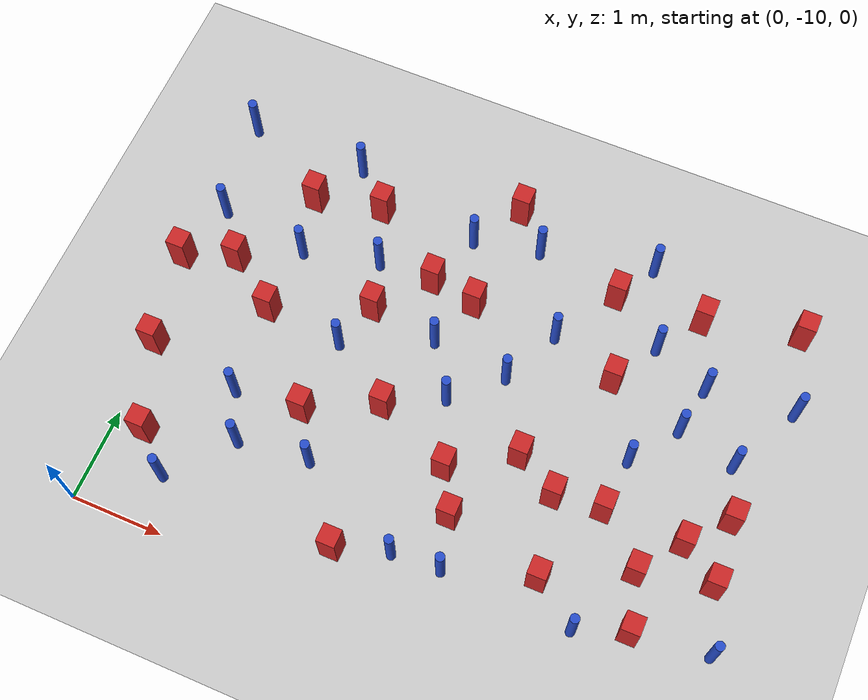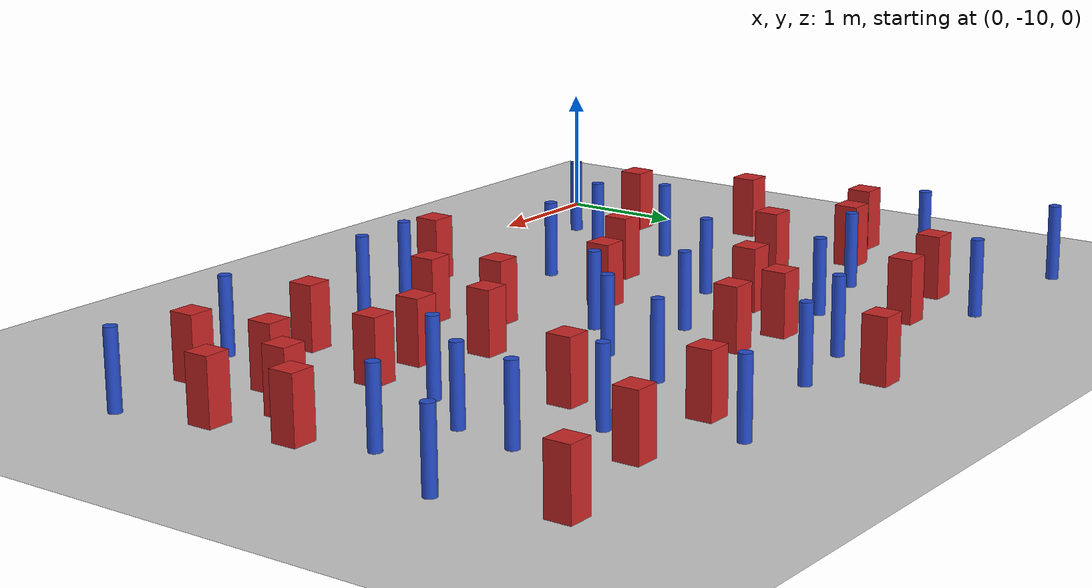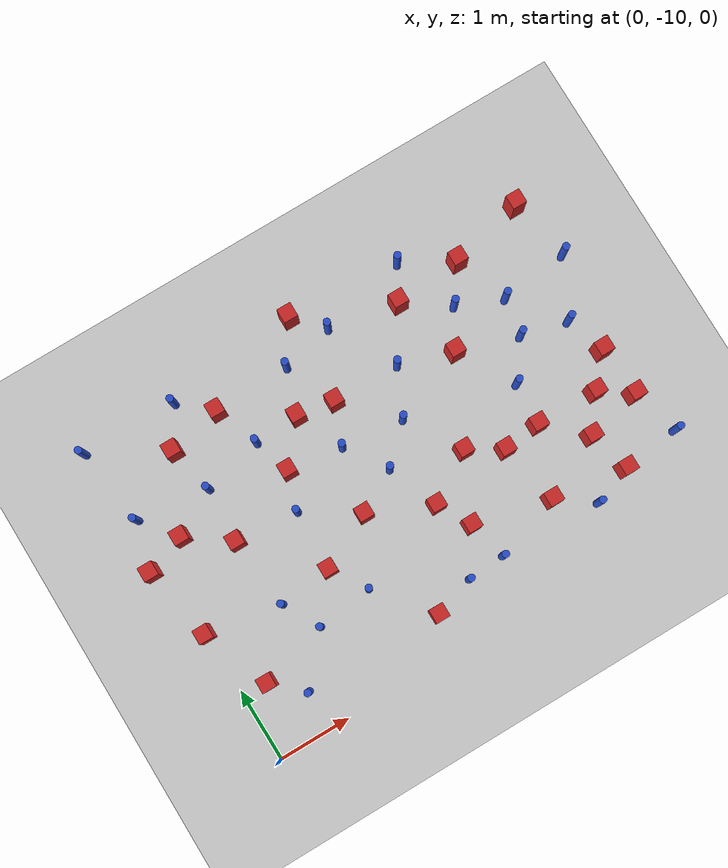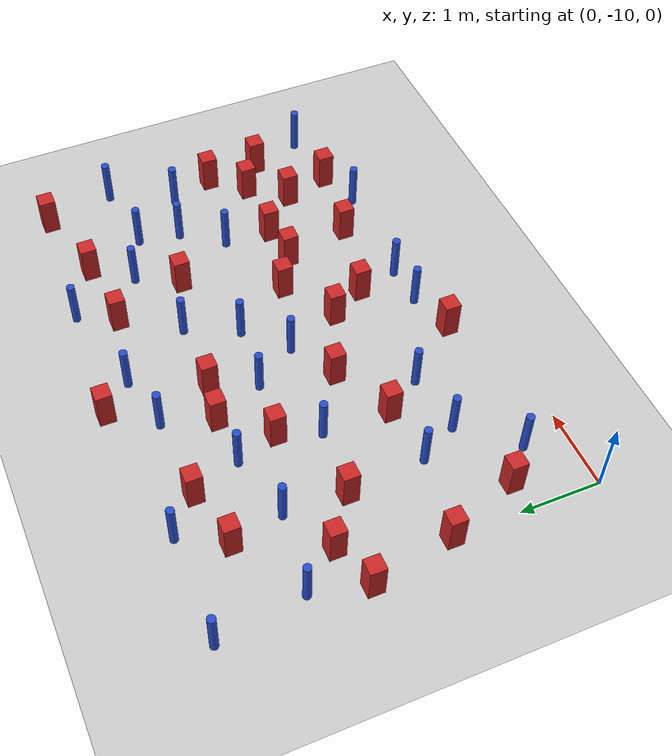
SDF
<sdf version="1.6">
 <world name="default">
  <model name="ground_plane">
   <static>1</static>
   <link name="link">
    <collision name="collision">
     <geometry><plane><normal>0 0 1</normal><size>100 100</size></plane></geometry>
     <surface><friction><ode><mu>100</mu><mu2>50</mu2></ode></friction></surface>
    </collision>
    <visual name="visual">
     <cast_shadows>0</cast_shadows>
     <geometry><plane><normal>0 0 1</normal><size>100 100</size></plane></geometry>
     <material>
      <ambient>1.0 1.0 1.0 1.0</ambient>
      <diffuse>0.8 0.8 0.8 1.0</diffuse>
      <specular>0.01 0.01 0.01 1.000000</specular>
     </material>
    </visual>
   </link>
  </model>
  <model name="square_post_obstacle1">
   <static>true</static>
   <pose>3.60007113201 -8.70975381348 1.91545236811e-07 -7.35059704564e-06 1.12565212e-07 2.39332434364e-05</pose>
   <link name="link">
    <pose>0 0 0.25 0 -0 0</pose>
    <inertial>
     <mass>100</mass>
     <inertia>
      <ixx>0.166667</ixx>
      <ixy>0</ixy>
      <ixz>0</ixz>
      <iyy>0.166667</iyy>
      <iyz>0</iyz>
      <izz>0.166667</izz>
     </inertia>
    </inertial>
    <collision name="collision"><geometry><box><size>.2 .2 .5</size></box></geometry></collision>
    <visual name="visual">
     <geometry><box><size>.2 .2 .5</size></box></geometry>
     <material>
      <script><name>Gazebo/Red</name><uri>file://media/materials/scripts/gazebo.material</uri></script>
     </material>
    </visual>
   </link>
  </model>
  <model name="pole_obstacle3">
   <static>true</static>
   <pose>2.62775557527 -5.74288238805 7.38925637345e-09 -8.47170692798e-08 1.24976765033e-08 -1.74513093019e-07</pose>
   <link name="link">
    <pose>0 0 0.3 0 -0 0</pose>
    <inertial>
     <mass>1</mass>
     <inertia><ixx>0.145833</ixx><ixy>0</ixy><ixz>0</ixz><iyy>0.145833</iyy><iyz>0</iyz><izz>0.125</izz></inertia>
    </inertial>
    <collision name="collision">
     <geometry><cylinder><radius>0.05</radius><length>.6</length></cylinder></geometry>
    </collision>
    <visual name="visual">
     <geometry><cylinder><radius>0.05</radius><length>.6</length></cylinder></geometry>
     <material>
      <script><name>Gazebo/Blue</name><uri>file://media/materials/scripts/gazebo.material</uri></script>
     </material>
    </visual>
   </link>
  </model>
  <model name="square_post_obstacle2">
   <static>true</static>
   <pose>-0.00571309946755 -8.15404881912 1.91545236811e-07 -7.35059704564e-06 1.12565212e-07 2.39332434364e-05</pose>
   <link name="link">
    <pose>0 0 0.25 0 -0 0</pose>
    <inertial>
     <mass>100</mass>
     <inertia>
      <ixx>0.166667</ixx>
      <ixy>0</ixy>
      <ixz>0</ixz>
      <iyy>0.166667</iyy>
      <iyz>0</iyz>
      <izz>0.166667</izz>
     </inertia>
    </inertial>
    <collision name="collision"><geometry><box><size>.2 .2 .5</size></box></geometry></collision>
    <visual name="visual">
     <geometry><box><size>.2 .2 .5</size></box></geometry>
     <material>
      <script><name>Gazebo/Red</name><uri>file://media/materials/scripts/gazebo.material</uri></script>
     </material>
    </visual>
   </link>
  </model>
  <model name="square_post_obstacle4">
   <static>true</static>
   <pose>0.83003484801 -5.93253629096 1.91545236811e-07 -7.35059704564e-06 1.12565212e-07 2.39332434364e-05</pose>
   <link name="link">
    <pose>0 0 0.25 0 -0 0</pose>
    <inertial>
     <mass>100</mass>
     <inertia>
      <ixx>0.166667</ixx>
      <ixy>0</ixy>
      <ixz>0</ixz>
      <iyy>0.166667</iyy>
      <iyz>0</iyz>
      <izz>0.166667</izz>
     </inertia>
    </inertial>
    <collision name="collision"><geometry><box><size>.2 .2 .5</size></box></geometry></collision>
    <visual name="visual">
     <geometry><box><size>.2 .2 .5</size></box></geometry>
     <material>
      <script><name>Gazebo/Red</name><uri>file://media/materials/scripts/gazebo.material</uri></script>
     </material>
    </visual>
   </link>
  </model>
  <model name="square_post_obstacle5">
   <static>true</static>
   <pose>3.35127214875 -8.25828896306 1.91545236811e-07 -7.35059704564e-06 1.12565212e-07 2.39332434364e-05</pose>
   <link name="link">
    <pose>0 0 0.25 0 -0 0</pose>
    <inertial>
     <mass>100</mass>
     <inertia>
      <ixx>0.166667</ixx>
      <ixy>0</ixy>
      <ixz>0</ixz>
      <iyy>0.166667</iyy>
      <iyz>0</iyz>
      <izz>0.166667</izz>
     </inertia>
    </inertial>
    <collision name="collision"><geometry><box><size>.2 .2 .5</size></box></geometry></collision>
    <visual name="visual">
     <geometry><box><size>.2 .2 .5</size></box></geometry>
     <material>
      <script><name>Gazebo/Red</name><uri>file://media/materials/scripts/gazebo.material</uri></script>
     </material>
    </visual>
   </link>
  </model>
  <model name="pole_obstacle14">
   <static>true</static>
   <pose>0.746739444171 -9.45464630516 7.38925637345e-09 -8.47170692797e-08 1.249767648e-08 -1.74513093032e-07</pose>
   <link name="link">
    <pose>0 0 0.3 0 -0 0</pose>
    <inertial>
     <mass>1</mass>
     <inertia><ixx>0.145833</ixx><ixy>0</ixy><ixz>0</ixz><iyy>0.145833</iyy><iyz>0</iyz><izz>0.125</izz></inertia>
    </inertial>
    <collision name="collision">
     <geometry><cylinder><radius>0.05</radius><length>.6</length></cylinder></geometry>
    </collision>
    <visual name="visual">
     <geometry><cylinder><radius>0.05</radius><length>.6</length></cylinder></geometry>
     <material>
      <script><name>Gazebo/Blue</name><uri>file://media/materials/scripts/gazebo.material</uri></script>
     </material>
    </visual>
   </link>
  </model>
  <model name="pole_obstacle26">
   <static>true</static>
   <pose>5.42265023992 -6.95552953939 7.38925637345e-09 -8.47170692796e-08 1.24976764786e-08 -1.74513093032e-07</pose>
   <link name="link">
    <pose>0 0 0.3 0 -0 0</pose>
    <inertial>
     <mass>1</mass>
     <inertia><ixx>0.145833</ixx><ixy>0</ixy><ixz>0</ixz><iyy>0.145833</iyy><iyz>0</iyz><izz>0.125</izz></inertia>
    </inertial>
    <collision name="collision">
     <geometry><cylinder><radius>0.05</radius><length>.6</length></cylinder></geometry>
    </collision>
    <visual name="visual">
     <geometry><cylinder><radius>0.05</radius><length>.6</length></cylinder></geometry>
     <material>
      <script><name>Gazebo/Blue</name><uri>file://media/materials/scripts/gazebo.material</uri></script>
     </material>
    </visual>
   </link>
  </model>
  <model name="square_post_obstacle19">
   <static>true</static>
   <pose>2.92785680124 -6.44692021054 1.91545236811e-07 -7.35059704564e-06 1.12565212e-07 2.39332434364e-05</pose>
   <link name="link">
    <pose>0 0 0.25 0 -0 0</pose>
    <inertial>
     <mass>100</mass>
     <inertia>
      <ixx>0.166667</ixx>
      <ixy>0</ixy>
      <ixz>0</ixz>
      <iyy>0.166667</iyy>
      <iyz>0</iyz>
      <izz>0.166667</izz>
     </inertia>
    </inertial>
    <collision name="collision"><geometry><box><size>.2 .2 .5</size></box></geometry></collision>
    <visual name="visual">
     <geometry><box><size>.2 .2 .5</size></box></geometry>
     <material>
      <script><name>Gazebo/Red</name><uri>file://media/materials/scripts/gazebo.material</uri></script>
     </material>
    </visual>
   </link>
  </model>
  <model name="square_post_obstacle23">
   <static>true</static>
   <pose>1.95790335823 -6.9051319329 1.91545236811e-07 -7.35059704564e-06 1.12565212e-07 2.39332434364e-05</pose>
   <link name="link">
    <pose>0 0 0.25 0 -0 0</pose>
    <inertial>
     <mass>100</mass>
     <inertia>
      <ixx>0.166667</ixx>
      <ixy>0</ixy>
      <ixz>0</ixz>
      <iyy>0.166667</iyy>
      <iyz>0</iyz>
      <izz>0.166667</izz>
     </inertia>
    </inertial>
    <collision name="collision"><geometry><box><size>.2 .2 .5</size></box></geometry></collision>
    <visual name="visual">
     <geometry><box><size>.2 .2 .5</size></box></geometry>
     <material>
      <script><name>Gazebo/Red</name><uri>file://media/materials/scripts/gazebo.material</uri></script>
     </material>
    </visual>
   </link>
  </model>
  <model name="pole_obstacle31">
   <static>true</static>
   <pose>3.86045111575 -6.46031400255 7.38925637345e-09 -8.47170692798e-08 1.24976765033e-08 -1.74513093019e-07</pose>
   <link name="link">
    <pose>0 0 0.3 0 -0 0</pose>
    <inertial>
     <mass>1</mass>
     <inertia><ixx>0.145833</ixx><ixy>0</ixy><ixz>0</ixz><iyy>0.145833</iyy><iyz>0</iyz><izz>0.125</izz></inertia>
    </inertial>
    <collision name="collision">
     <geometry><cylinder><radius>0.05</radius><length>.6</length></cylinder></geometry>
    </collision>
    <visual name="visual">
     <geometry><cylinder><radius>0.05</radius><length>.6</length></cylinder></geometry>
     <material>
      <script><name>Gazebo/Blue</name><uri>file://media/materials/scripts/gazebo.material</uri></script>
     </material>
    </visual>
   </link>
  </model>
  <model name="pole_obstacle36">
   <static>true</static>
   <pose>4.89690925731 -6.17365873826 7.38925637345e-09 -8.47170692796e-08 1.24976764786e-08 -1.74513093032e-07</pose>
   <link name="link">
    <pose>0 0 0.3 0 -0 0</pose>
    <inertial>
     <mass>1</mass>
     <inertia><ixx>0.145833</ixx><ixy>0</ixy><ixz>0</ixz><iyy>0.145833</iyy><iyz>0</iyz><izz>0.125</izz></inertia>
    </inertial>
    <collision name="collision">
     <geometry><cylinder><radius>0.05</radius><length>.6</length></cylinder></geometry>
    </collision>
    <visual name="visual">
     <geometry><cylinder><radius>0.05</radius><length>.6</length></cylinder></geometry>
     <material>
      <script><name>Gazebo/Blue</name><uri>file://media/materials/scripts/gazebo.material</uri></script>
     </material>
    </visual>
   </link>
  </model>
  <model name="square_post_obstacle33">
   <static>true</static>
   <pose>5.85412446367 -8.06886549857 1.91545236811e-07 -7.35059704564e-06 1.12565212e-07 2.39332434364e-05</pose>
   <link name="link">
    <pose>0 0 0.25 0 -0 0</pose>
    <inertial>
     <mass>100</mass>
     <inertia>
      <ixx>0.166667</ixx>
      <ixy>0</ixy>
      <ixz>0</ixz>
      <iyy>0.166667</iyy>
      <iyz>0</iyz>
      <izz>0.166667</izz>
     </inertia>
    </inertial>
    <collision name="collision"><geometry><box><size>.2 .2 .5</size></box></geometry></collision>
    <visual name="visual">
     <geometry><box><size>.2 .2 .5</size></box></geometry>
     <material>
      <script><name>Gazebo/Red</name><uri>file://media/materials/scripts/gazebo.material</uri></script>
     </material>
    </visual>
   </link>
  </model>
  <model name="pole_obstacle49">
   <static>true</static>
   <pose>5.51853349236 -6.43197653909 7.38925637345e-09 -8.47170692796e-08 1.24976764786e-08 -1.74513093032e-07</pose>
   <link name="link">
    <pose>0 0 0.3 0 -0 0</pose>
    <inertial>
     <mass>1</mass>
     <inertia><ixx>0.145833</ixx><ixy>0</ixy><ixz>0</ixz><iyy>0.145833</iyy><iyz>0</iyz><izz>0.125</izz></inertia>
    </inertial>
    <collision name="collision">
     <geometry><cylinder><radius>0.05</radius><length>.6</length></cylinder></geometry>
    </collision>
    <visual name="visual">
     <geometry><cylinder><radius>0.05</radius><length>.6</length></cylinder></geometry>
     <material>
      <script><name>Gazebo/Blue</name><uri>file://media/materials/scripts/gazebo.material</uri></script>
     </material>
    </visual>
   </link>
  </model>
  <model name="square_post_obstacle40">
   <static>true</static>
   <pose>5.66714782452 -9.11094235652 1.91545236811e-07 -7.35059704564e-06 1.12565212e-07 2.39332434364e-05</pose>
   <link name="link">
    <pose>0 0 0.25 0 -0 0</pose>
    <inertial>
     <mass>100</mass>
     <inertia>
      <ixx>0.166667</ixx>
      <ixy>0</ixy>
      <ixz>0</ixz>
      <iyy>0.166667</iyy>
      <iyz>0</iyz>
      <izz>0.166667</izz>
     </inertia>
    </inertial>
    <collision name="collision"><geometry><box><size>.2 .2 .5</size></box></geometry></collision>
    <visual name="visual">
     <geometry><box><size>.2 .2 .5</size></box></geometry>
     <material>
      <script><name>Gazebo/Red</name><uri>file://media/materials/scripts/gazebo.material</uri></script>
     </material>
    </visual>
   </link>
  </model>
  <model name="pole_obstacle55">
   <static>true</static>
   <pose>1.14823176474 -5.3985442383 7.38925637345e-09 -8.47170692799e-08 1.24976765033e-08 -1.74513093018e-07</pose>
   <link name="link">
    <pose>0 0 0.3 0 -0 0</pose>
    <inertial>
     <mass>1</mass>
     <inertia><ixx>0.145833</ixx><ixy>0</ixy><ixz>0</ixz><iyy>0.145833</iyy><iyz>0</iyz><izz>0.125</izz></inertia>
    </inertial>
    <collision name="collision">
     <geometry><cylinder><radius>0.05</radius><length>.6</length></cylinder></geometry>
    </collision>
    <visual name="visual">
     <geometry><cylinder><radius>0.05</radius><length>.6</length></cylinder></geometry>
     <material>
      <script><name>Gazebo/Blue</name><uri>file://media/materials/scripts/gazebo.material</uri></script>
     </material>
    </visual>
   </link>
  </model>
  <model name="square_post_obstacle42">
   <static>true</static>
   <pose>4.0143747495 -7.84212469346 1.91545236811e-07 -7.35059704564e-06 1.12565212e-07 2.39332434364e-05</pose>
   <link name="link">
    <pose>0 0 0.25 0 -0 0</pose>
    <inertial>
     <mass>100</mass>
     <inertia>
      <ixx>0.166667</ixx>
      <ixy>0</ixy>
      <ixz>0</ixz>
      <iyy>0.166667</iyy>
      <iyz>0</iyz>
      <izz>0.166667</izz>
     </inertia>
    </inertial>
    <collision name="collision"><geometry><box><size>.2 .2 .5</size></box></geometry></collision>
    <visual name="visual">
     <geometry><box><size>.2 .2 .5</size></box></geometry>
     <material>
      <script><name>Gazebo/Red</name><uri>file://media/materials/scripts/gazebo.material</uri></script>
     </material>
    </visual>
   </link>
  </model>
  <model name="square_post_obstacle48">
   <static>true</static>
   <pose>4.65203115893 -8.958201384 1.91545236811e-07 -7.35059704564e-06 1.12565212e-07 2.39332434364e-05</pose>
   <link name="link">
    <pose>0 0 0.25 0 -0 0</pose>
    <inertial>
     <mass>100</mass>
     <inertia>
      <ixx>0.166667</ixx>
      <ixy>0</ixy>
      <ixz>0</ixz>
      <iyy>0.166667</iyy>
      <iyz>0</iyz>
      <izz>0.166667</izz>
     </inertia>
    </inertial>
    <collision name="collision"><geometry><box><size>.2 .2 .5</size></box></geometry></collision>
    <visual name="visual">
     <geometry><box><size>.2 .2 .5</size></box></geometry>
     <material>
      <script><name>Gazebo/Red</name><uri>file://media/materials/scripts/gazebo.material</uri></script>
     </material>
    </visual>
   </link>
  </model>
  <model name="square_post_obstacle52">
   <static>true</static>
   <pose>2.5039220069 -7.88337168289 1.91545236811e-07 -7.35059704564e-06 1.12565212e-07 2.39332434364e-05</pose>
   <link name="link">
    <pose>0 0 0.25 0 -0 0</pose>
    <inertial>
     <mass>100</mass>
     <inertia>
      <ixx>0.166667</ixx>
      <ixy>0</ixy>
      <ixz>0</ixz>
      <iyy>0.166667</iyy>
      <iyz>0</iyz>
      <izz>0.166667</izz>
     </inertia>
    </inertial>
    <collision name="collision"><geometry><box><size>.2 .2 .5</size></box></geometry></collision>
    <visual name="visual">
     <geometry><box><size>.2 .2 .5</size></box></geometry>
     <material>
      <script><name>Gazebo/Red</name><uri>file://media/materials/scripts/gazebo.material</uri></script>
     </material>
    </visual>
   </link>
  </model>
  <model name="square_post_obstacle61">
   <static>true</static>
   <pose>4.29645073439 -5.76788240031 1.91545236811e-07 -7.35059704564e-06 1.12565212e-07 2.39332434364e-05</pose>
   <link name="link">
    <pose>0 0 0.25 0 -0 0</pose>
    <inertial>
     <mass>100</mass>
     <inertia>
      <ixx>0.166667</ixx>
      <ixy>0</ixy>
      <ixz>0</ixz>
      <iyy>0.166667</iyy>
      <iyz>0</iyz>
      <izz>0.166667</izz>
     </inertia>
    </inertial>
    <collision name="collision"><geometry><box><size>.2 .2 .5</size></box></geometry></collision>
    <visual name="visual">
     <geometry><box><size>.2 .2 .5</size></box></geometry>
     <material>
      <script><name>Gazebo/Red</name><uri>file://media/materials/scripts/gazebo.material</uri></script>
     </material>
    </visual>
   </link>
  </model>
  <model name="pole_obstacle72">
   <static>true</static>
   <pose>-0.167908209576 -5.37216037171 7.38925637345e-09 -8.47170692799e-08 1.24976765043e-08 -1.74513093019e-07</pose>
   <link name="link">
    <pose>0 0 0.3 0 -0 0</pose>
    <inertial>
     <mass>1</mass>
     <inertia><ixx>0.145833</ixx><ixy>0</ixy><ixz>0</ixz><iyy>0.145833</iyy><iyz>0</iyz><izz>0.125</izz></inertia>
    </inertial>
    <collision name="collision">
     <geometry><cylinder><radius>0.05</radius><length>.6</length></cylinder></geometry>
    </collision>
    <visual name="visual">
     <geometry><cylinder><radius>0.05</radius><length>.6</length></cylinder></geometry>
     <material>
      <script><name>Gazebo/Blue</name><uri>file://media/materials/scripts/gazebo.material</uri></script>
     </material>
    </visual>
   </link>
  </model>
  <model name="pole_obstacle76">
   <static>true</static>
   <pose>-0.0161964119986 -6.45572256769 7.38925637345e-09 -8.471706928e-08 1.24976765084e-08 -1.74513093016e-07</pose>
   <link name="link">
    <pose>0 0 0.3 0 -0 0</pose>
    <inertial>
     <mass>1</mass>
     <inertia><ixx>0.145833</ixx><ixy>0</ixy><ixz>0</ixz><iyy>0.145833</iyy><iyz>0</iyz><izz>0.125</izz></inertia>
    </inertial>
    <collision name="collision">
     <geometry><cylinder><radius>0.05</radius><length>.6</length></cylinder></geometry>
    </collision>
    <visual name="visual">
     <geometry><cylinder><radius>0.05</radius><length>.6</length></cylinder></geometry>
     <material>
      <script><name>Gazebo/Blue</name><uri>file://media/materials/scripts/gazebo.material</uri></script>
     </material>
    </visual>
   </link>
  </model>
  <model name="pole_obstacle77">
   <static>true</static>
   <pose>0.96881919958 -6.58561730798 7.38925637345e-09 -8.471706928e-08 1.24976765144e-08 -1.74513093012e-07</pose>
   <link name="link">
    <pose>0 0 0.3 0 -0 0</pose>
    <inertial>
     <mass>1</mass>
     <inertia><ixx>0.145833</ixx><ixy>0</ixy><ixz>0</ixz><iyy>0.145833</iyy><iyz>0</iyz><izz>0.125</izz></inertia>
    </inertial>
    <collision name="collision">
     <geometry><cylinder><radius>0.05</radius><length>.6</length></cylinder></geometry>
    </collision>
    <visual name="visual">
     <geometry><cylinder><radius>0.05</radius><length>.6</length></cylinder></geometry>
     <material>
      <script><name>Gazebo/Blue</name><uri>file://media/materials/scripts/gazebo.material</uri></script>
     </material>
    </visual>
   </link>
  </model>
  <model name="square_post_obstacle76">
   <static>true</static>
   <pose>6.21691720021 -7.65410108046 1.91545236811e-07 -7.35059704564e-06 1.12565212e-07 2.39332434364e-05</pose>
   <link name="link">
    <pose>0 0 0.25 0 -0 0</pose>
    <inertial>
     <mass>100</mass>
     <inertia>
      <ixx>0.166667</ixx>
      <ixy>0</ixy>
      <ixz>0</ixz>
      <iyy>0.166667</iyy>
      <iyz>0</iyz>
      <izz>0.166667</izz>
     </inertia>
    </inertial>
    <collision name="collision"><geometry><box><size>.2 .2 .5</size></box></geometry></collision>
    <visual name="visual">
     <geometry><box><size>.2 .2 .5</size></box></geometry>
     <material>
      <script><name>Gazebo/Red</name><uri>file://media/materials/scripts/gazebo.material</uri></script>
     </material>
    </visual>
   </link>
  </model>
  <model name="square_post_obstacle77">
   <static>true</static>
   <pose>5.23512715146 -5.69033070223 1.91545236811e-07 -7.35059704564e-06 1.12565212e-07 2.39332434364e-05</pose>
   <link name="link">
    <pose>0 0 0.25 0 -0 0</pose>
    <inertial>
     <mass>100</mass>
     <inertia>
      <ixx>0.166667</ixx>
      <ixy>0</ixy>
      <ixz>0</ixz>
      <iyy>0.166667</iyy>
      <iyz>0</iyz>
      <izz>0.166667</izz>
     </inertia>
    </inertial>
    <collision name="collision"><geometry><box><size>.2 .2 .5</size></box></geometry></collision>
    <visual name="visual">
     <geometry><box><size>.2 .2 .5</size></box></geometry>
     <material>
      <script><name>Gazebo/Red</name><uri>file://media/materials/scripts/gazebo.material</uri></script>
     </material>
    </visual>
   </link>
  </model>
  <model name="square_post_obstacle78">
   <static>true</static>
   <pose>4.5902290383 -6.69207446244 1.91545236811e-07 -7.35059704564e-06 1.12565212e-07 2.39332434364e-05</pose>
   <link name="link">
    <pose>0 0 0.25 0 -0 0</pose>
    <inertial>
     <mass>100</mass>
     <inertia>
      <ixx>0.166667</ixx>
      <ixy>0</ixy>
      <ixz>0</ixz>
      <iyy>0.166667</iyy>
      <iyz>0</iyz>
      <izz>0.166667</izz>
     </inertia>
    </inertial>
    <collision name="collision"><geometry><box><size>.2 .2 .5</size></box></geometry></collision>
    <visual name="visual">
     <geometry><box><size>.2 .2 .5</size></box></geometry>
     <material>
      <script><name>Gazebo/Red</name><uri>file://media/materials/scripts/gazebo.material</uri></script>
     </material>
    </visual>
   </link>
  </model>
  <model name="square_post_obstacle81">
   <static>true</static>
   <pose>-0.196727285923 -7.12766055456 1.91545236811e-07 -7.35059704564e-06 1.12565212e-07 2.39332434364e-05</pose>
   <link name="link">
    <pose>0 0 0.25 0 -0 0</pose>
    <inertial>
     <mass>100</mass>
     <inertia>
      <ixx>0.166667</ixx>
      <ixy>0</ixy>
      <ixz>0</ixz>
      <iyy>0.166667</iyy>
      <iyz>0</iyz>
      <izz>0.166667</izz>
     </inertia>
    </inertial>
    <collision name="collision"><geometry><box><size>.2 .2 .5</size></box></geometry></collision>
    <visual name="visual">
     <geometry><box><size>.2 .2 .5</size></box></geometry>
     <material>
      <script><name>Gazebo/Red</name><uri>file://media/materials/scripts/gazebo.material</uri></script>
     </material>
    </visual>
   </link>
  </model>
  <model name="square_post_obstacle82">
   <static>true</static>
   <pose>2.41506648777 -6.36062964212 1.91545236811e-07 -7.35059704564e-06 1.12565212e-07 2.39332434364e-05</pose>
   <link name="link">
    <pose>0 0 0.25 0 -0 0</pose>
    <inertial>
     <mass>100</mass>
     <inertia>
      <ixx>0.166667</ixx>
      <ixy>0</ixy>
      <ixz>0</ixz>
      <iyy>0.166667</iyy>
      <iyz>0</iyz>
      <izz>0.166667</izz>
     </inertia>
    </inertial>
    <collision name="collision"><geometry><box><size>.2 .2 .5</size></box></geometry></collision>
    <visual name="visual">
     <geometry><box><size>.2 .2 .5</size></box></geometry>
     <material>
      <script><name>Gazebo/Red</name><uri>file://media/materials/scripts/gazebo.material</uri></script>
     </material>
    </visual>
   </link>
  </model>
  <model name="pole_obstacle101">
   <static>true</static>
   <pose>1.78734862897 -7.42191723062 7.38925637345e-09 -8.47170692799e-08 1.24976765033e-08 -1.74513093018e-07</pose>
   <link name="link">
    <pose>0 0 0.3 0 -0 0</pose>
    <inertial>
     <mass>1</mass>
     <inertia><ixx>0.145833</ixx><ixy>0</ixy><ixz>0</ixz><iyy>0.145833</iyy><iyz>0</iyz><izz>0.125</izz></inertia>
    </inertial>
    <collision name="collision">
     <geometry><cylinder><radius>0.05</radius><length>.6</length></cylinder></geometry>
    </collision>
    <visual name="visual">
     <geometry><cylinder><radius>0.05</radius><length>.6</length></cylinder></geometry>
     <material>
      <script><name>Gazebo/Blue</name><uri>file://media/materials/scripts/gazebo.material</uri></script>
     </material>
    </visual>
   </link>
  </model>
  <model name="pole_obstacle108">
   <static>true</static>
   <pose>3.73988761399 -9.26053057164 7.38925637345e-09 -8.47170692793e-08 1.24976764408e-08 -1.74513093041e-07</pose>
   <link name="link">
    <pose>0 0 0.3 0 -0 0</pose>
    <inertial>
     <mass>1</mass>
     <inertia><ixx>0.145833</ixx><ixy>0</ixy><ixz>0</ixz><iyy>0.145833</iyy><iyz>0</iyz><izz>0.125</izz></inertia>
    </inertial>
    <collision name="collision">
     <geometry><cylinder><radius>0.05</radius><length>.6</length></cylinder></geometry>
    </collision>
    <visual name="visual">
     <geometry><cylinder><radius>0.05</radius><length>.6</length></cylinder></geometry>
     <material>
      <script><name>Gazebo/Blue</name><uri>file://media/materials/scripts/gazebo.material</uri></script>
     </material>
    </visual>
   </link>
  </model>
  <model name="pole_obstacle109">
   <static>true</static>
   <pose>1.28917049189 -8.82945631418 7.38925637345e-09 -8.47170692798e-08 1.24976764881e-08 -1.74513093027e-07</pose>
   <link name="link">
    <pose>0 0 0.3 0 -0 0</pose>
    <inertial>
     <mass>1</mass>
     <inertia><ixx>0.145833</ixx><ixy>0</ixy><ixz>0</ixz><iyy>0.145833</iyy><iyz>0</iyz><izz>0.125</izz></inertia>
    </inertial>
    <collision name="collision">
     <geometry><cylinder><radius>0.05</radius><length>.6</length></cylinder></geometry>
    </collision>
    <visual name="visual">
     <geometry><cylinder><radius>0.05</radius><length>.6</length></cylinder></geometry>
     <material>
      <script><name>Gazebo/Blue</name><uri>file://media/materials/scripts/gazebo.material</uri></script>
     </material>
    </visual>
   </link>
  </model>
  <model name="pole_obstacle112">
   <static>true</static>
   <pose>2.06163898073 -8.73681210842 7.38925637345e-09 -8.47170692793e-08 1.24976764408e-08 -1.74513093041e-07</pose>
   <link name="link">
    <pose>0 0 0.3 0 -0 0</pose>
    <inertial>
     <mass>1</mass>
     <inertia><ixx>0.145833</ixx><ixy>0</ixy><ixz>0</ixz><iyy>0.145833</iyy><iyz>0</iyz><izz>0.125</izz></inertia>
    </inertial>
    <collision name="collision">
     <geometry><cylinder><radius>0.05</radius><length>.6</length></cylinder></geometry>
    </collision>
    <visual name="visual">
     <geometry><cylinder><radius>0.05</radius><length>.6</length></cylinder></geometry>
     <material>
      <script><name>Gazebo/Blue</name><uri>file://media/materials/scripts/gazebo.material</uri></script>
     </material>
    </visual>
   </link>
  </model>
  <model name="pole_obstacle130">
   <static>true</static>
   <pose>6.45870910962 -6.32146322471 7.38925637345e-09 -8.47170692796e-08 1.24976764786e-08 -1.74513093032e-07</pose>
   <link name="link">
    <pose>0 0 0.3 0 -0 0</pose>
    <inertial>
     <mass>1</mass>
     <inertia><ixx>0.145833</ixx><ixy>0</ixy><ixz>0</ixz><iyy>0.145833</iyy><iyz>0</iyz><izz>0.125</izz></inertia>
    </inertial>
    <collision name="collision">
     <geometry><cylinder><radius>0.05</radius><length>.6</length></cylinder></geometry>
    </collision>
    <visual name="visual">
     <geometry><cylinder><radius>0.05</radius><length>.6</length></cylinder></geometry>
     <material>
      <script><name>Gazebo/Blue</name><uri>file://media/materials/scripts/gazebo.material</uri></script>
     </material>
    </visual>
   </link>
  </model>
  <model name="pole_obstacle131">
   <static>true</static>
   <pose>1.79673824883 -6.38795552696 7.38925637345e-09 -8.47170692799e-08 1.24976765033e-08 -1.74513093018e-07</pose>
   <link name="link">
    <pose>0 0 0.3 0 -0 0</pose>
    <inertial>
     <mass>1</mass>
     <inertia><ixx>0.145833</ixx><ixy>0</ixy><ixz>0</ixz><iyy>0.145833</iyy><iyz>0</iyz><izz>0.125</izz></inertia>
    </inertial>
    <collision name="collision">
     <geometry><cylinder><radius>0.05</radius><length>.6</length></cylinder></geometry>
    </collision>
    <visual name="visual">
     <geometry><cylinder><radius>0.05</radius><length>.6</length></cylinder></geometry>
     <material>
      <script><name>Gazebo/Blue</name><uri>file://media/materials/scripts/gazebo.material</uri></script>
     </material>
    </visual>
   </link>
  </model>
  <model name="square_post_obstacle133">
   <static>true</static>
   <pose>1.75335959816 -8.25029583809 1.91545236811e-07 -7.35059704564e-06 1.12565212e-07 2.39332434364e-05</pose>
   <link name="link">
    <pose>0 0 0.25 0 -0 0</pose>
    <inertial>
     <mass>100</mass>
     <inertia>
      <ixx>0.166667</ixx>
      <ixy>0</ixy>
      <ixz>0</ixz>
      <iyy>0.166667</iyy>
      <iyz>0</iyz>
      <izz>0.166667</izz>
     </inertia>
    </inertial>
    <collision name="collision"><geometry><box><size>.2 .2 .5</size></box></geometry></collision>
    <visual name="visual">
     <geometry><box><size>.2 .2 .5</size></box></geometry>
     <material>
      <script><name>Gazebo/Red</name><uri>file://media/materials/scripts/gazebo.material</uri></script>
     </material>
    </visual>
   </link>
  </model>
  <model name="square_post_obstacle141">
   <static>true</static>
   <pose>2.98313489782 -5.2010471475 1.91545236811e-07 -7.35059704564e-06 1.12565212e-07 2.39332434364e-05</pose>
   <link name="link">
    <pose>0 0 0.25 0 -0 0</pose>
    <inertial>
     <mass>100</mass>
     <inertia>
      <ixx>0.166667</ixx>
      <ixy>0</ixy>
      <ixz>0</ixz>
      <iyy>0.166667</iyy>
      <iyz>0</iyz>
      <izz>0.166667</izz>
     </inertia>
    </inertial>
    <collision name="collision"><geometry><box><size>.2 .2 .5</size></box></geometry></collision>
    <visual name="visual">
     <geometry><box><size>.2 .2 .5</size></box></geometry>
     <material>
      <script><name>Gazebo/Red</name><uri>file://media/materials/scripts/gazebo.material</uri></script>
     </material>
    </visual>
   </link>
  </model>
  <model name="pole_obstacle150">
   <static>true</static>
   <pose>3.55891432276 -7.10057941113 7.38925637345e-09 -8.47170692798e-08 1.24976765033e-08 -1.74513093019e-07</pose>
   <link name="link">
    <pose>0 0 0.3 0 -0 0</pose>
    <inertial>
     <mass>1</mass>
     <inertia><ixx>0.145833</ixx><ixy>0</ixy><ixz>0</ixz><iyy>0.145833</iyy><iyz>0</iyz><izz>0.125</izz></inertia>
    </inertial>
    <collision name="collision">
     <geometry><cylinder><radius>0.05</radius><length>.6</length></cylinder></geometry>
    </collision>
    <visual name="visual">
     <geometry><cylinder><radius>0.05</radius><length>.6</length></cylinder></geometry>
     <material>
      <script><name>Gazebo/Blue</name><uri>file://media/materials/scripts/gazebo.material</uri></script>
     </material>
    </visual>
   </link>
  </model>
  <model name="square_post_obstacle147">
   <static>true</static>
   <pose>0.357871273008 -6.93424556256 1.91545236811e-07 -7.35059704564e-06 1.12565212e-07 2.39332434364e-05</pose>
   <link name="link">
    <pose>0 0 0.25 0 -0 0</pose>
    <inertial>
     <mass>100</mass>
     <inertia>
      <ixx>0.166667</ixx>
      <ixy>0</ixy>
      <ixz>0</ixz>
      <iyy>0.166667</iyy>
      <iyz>0</iyz>
      <izz>0.166667</izz>
     </inertia>
    </inertial>
    <collision name="collision"><geometry><box><size>.2 .2 .5</size></box></geometry></collision>
    <visual name="visual">
     <geometry><box><size>.2 .2 .5</size></box></geometry>
     <material>
      <script><name>Gazebo/Red</name><uri>file://media/materials/scripts/gazebo.material</uri></script>
     </material>
    </visual>
   </link>
  </model>
  <model name="pole_obstacle156">
   <static>true</static>
   <pose>6.05595045164 -7.10874867342 7.38925637345e-09 -8.47170692796e-08 1.24976764786e-08 -1.74513093032e-07</pose>
   <link name="link">
    <pose>0 0 0.3 0 -0 0</pose>
    <inertial>
     <mass>1</mass>
     <inertia><ixx>0.145833</ixx><ixy>0</ixy><ixz>0</ixz><iyy>0.145833</iyy><iyz>0</iyz><izz>0.125</izz></inertia>
    </inertial>
    <collision name="collision">
     <geometry><cylinder><radius>0.05</radius><length>.6</length></cylinder></geometry>
    </collision>
    <visual name="visual">
     <geometry><cylinder><radius>0.05</radius><length>.6</length></cylinder></geometry>
     <material>
      <script><name>Gazebo/Blue</name><uri>file://media/materials/scripts/gazebo.material</uri></script>
     </material>
    </visual>
   </link>
  </model>
  <model name="square_post_obstacle152">
   <static>true</static>
   <pose>6.26153513459 -5.44596568589 1.91545236811e-07 -7.35059704564e-06 1.12565212e-07 2.39332434364e-05</pose>
   <link name="link">
    <pose>0 0 0.25 0 -0 0</pose>
    <inertial>
     <mass>100</mass>
     <inertia>
      <ixx>0.166667</ixx>
      <ixy>0</ixy>
      <ixz>0</ixz>
      <iyy>0.166667</iyy>
      <iyz>0</iyz>
      <izz>0.166667</izz>
     </inertia>
    </inertial>
    <collision name="collision"><geometry><box><size>.2 .2 .5</size></box></geometry></collision>
    <visual name="visual">
     <geometry><box><size>.2 .2 .5</size></box></geometry>
     <material>
      <script><name>Gazebo/Red</name><uri>file://media/materials/scripts/gazebo.material</uri></script>
     </material>
    </visual>
   </link>
  </model>
  <model name="pole_obstacle158">
   <static>true</static>
   <pose>3.08069786036 -7.56332336177 7.38925637345e-09 -8.47170692798e-08 1.24976765033e-08 -1.74513093019e-07</pose>
   <link name="link">
    <pose>0 0 0.3 0 -0 0</pose>
    <inertial>
     <mass>1</mass>
     <inertia><ixx>0.145833</ixx><ixy>0</ixy><ixz>0</ixz><iyy>0.145833</iyy><iyz>0</iyz><izz>0.125</izz></inertia>
    </inertial>
    <collision name="collision">
     <geometry><cylinder><radius>0.05</radius><length>.6</length></cylinder></geometry>
    </collision>
    <visual name="visual">
     <geometry><cylinder><radius>0.05</radius><length>.6</length></cylinder></geometry>
     <material>
      <script><name>Gazebo/Blue</name><uri>file://media/materials/scripts/gazebo.material</uri></script>
     </material>
    </visual>
   </link>
  </model>
  <model name="pole_obstacle165">
   <static>true</static>
   <pose>5.05177698481 -7.46646777181 7.38925637345e-09 -8.47170692796e-08 1.24976764786e-08 -1.74513093032e-07</pose>
   <link name="link">
    <pose>0 0 0.3 0 -0 0</pose>
    <inertial>
     <mass>1</mass>
     <inertia><ixx>0.145833</ixx><ixy>0</ixy><ixz>0</ixz><iyy>0.145833</iyy><iyz>0</iyz><izz>0.125</izz></inertia>
    </inertial>
    <collision name="collision">
     <geometry><cylinder><radius>0.05</radius><length>.6</length></cylinder></geometry>
    </collision>
    <visual name="visual">
     <geometry><cylinder><radius>0.05</radius><length>.6</length></cylinder></geometry>
     <material>
      <script><name>Gazebo/Blue</name><uri>file://media/materials/scripts/gazebo.material</uri></script>
     </material>
    </visual>
   </link>
  </model>
  <model name="square_post_obstacle159">
   <static>true</static>
   <pose>2.65565189786 -9.46046730037 1.91545236811e-07 -7.35059704564e-06 1.12565212e-07 2.39332434364e-05</pose>
   <link name="link">
    <pose>0 0 0.25 0 -0 0</pose>
    <inertial>
     <mass>100</mass>
     <inertia>
      <ixx>0.166667</ixx>
      <ixy>0</ixy>
      <ixz>0</ixz>
      <iyy>0.166667</iyy>
      <iyz>0</iyz>
      <izz>0.166667</izz>
     </inertia>
    </inertial>
    <collision name="collision"><geometry><box><size>.2 .2 .5</size></box></geometry></collision>
    <visual name="visual">
     <geometry><box><size>.2 .2 .5</size></box></geometry>
     <material>
      <script><name>Gazebo/Red</name><uri>file://media/materials/scripts/gazebo.material</uri></script>
     </material>
    </visual>
   </link>
  </model>
  <model name="square_post_obstacle170">
   <static>true</static>
   <pose>0.928479862887 -7.34339772564 1.91545236811e-07 -7.35059704564e-06 1.12565212e-07 2.39332434364e-05</pose>
   <link name="link">
    <pose>0 0 0.25 0 -0 0</pose>
    <inertial>
     <mass>100</mass>
     <inertia>
      <ixx>0.166667</ixx>
      <ixy>0</ixy>
      <ixz>0</ixz>
      <iyy>0.166667</iyy>
      <iyz>0</iyz>
      <izz>0.166667</izz>
     </inertia>
    </inertial>
    <collision name="collision"><geometry><box><size>.2 .2 .5</size></box></geometry></collision>
    <visual name="visual">
     <geometry><box><size>.2 .2 .5</size></box></geometry>
     <material>
      <script><name>Gazebo/Red</name><uri>file://media/materials/scripts/gazebo.material</uri></script>
     </material>
    </visual>
   </link>
  </model>
  <model name="square_post_obstacle171">
   <static>true</static>
   <pose>0.358543990971 -9.08106434612 1.91545236811e-07 -7.35059704564e-06 1.12565212e-07 2.39332434364e-05</pose>
   <link name="link">
    <pose>0 0 0.25 0 -0 0</pose>
    <inertial>
     <mass>100</mass>
     <inertia>
      <ixx>0.166667</ixx>
      <ixy>0</ixy>
      <ixz>0</ixz>
      <iyy>0.166667</iyy>
      <iyz>0</iyz>
      <izz>0.166667</izz>
     </inertia>
    </inertial>
    <collision name="collision"><geometry><box><size>.2 .2 .5</size></box></geometry></collision>
    <visual name="visual">
     <geometry><box><size>.2 .2 .5</size></box></geometry>
     <material>
      <script><name>Gazebo/Red</name><uri>file://media/materials/scripts/gazebo.material</uri></script>
     </material>
    </visual>
   </link>
  </model>
  <model name="pole_obstacle170">
   <static>true</static>
   <pose>1.02159298987 -8.33564706571 7.38925637345e-09 -8.47170692797e-08 1.24976764856e-08 -1.74513093028e-07</pose>
   <link name="link">
    <pose>0 0 0.3 0 -0 0</pose>
    <inertial>
     <mass>1</mass>
     <inertia><ixx>0.145833</ixx><ixy>0</ixy><ixz>0</ixz><iyy>0.145833</iyy><iyz>0</iyz><izz>0.125</izz></inertia>
    </inertial>
    <collision name="collision">
     <geometry><cylinder><radius>0.05</radius><length>.6</length></cylinder></geometry>
    </collision>
    <visual name="visual">
     <geometry><cylinder><radius>0.05</radius><length>.6</length></cylinder></geometry>
     <material>
      <script><name>Gazebo/Blue</name><uri>file://media/materials/scripts/gazebo.material</uri></script>
     </material>
    </visual>
   </link>
  </model>
  <model name="pole_obstacle173">
   <static>true</static>
   <pose>4.56062004603 -5.30690804198 7.38925637345e-09 -8.47170692796e-08 1.24976764786e-08 -1.74513093032e-07</pose>
   <link name="link">
    <pose>0 0 0.3 0 -0 0</pose>
    <inertial>
     <mass>1</mass>
     <inertia><ixx>0.145833</ixx><ixy>0</ixy><ixz>0</ixz><iyy>0.145833</iyy><iyz>0</iyz><izz>0.125</izz></inertia>
    </inertial>
    <collision name="collision">
     <geometry><cylinder><radius>0.05</radius><length>.6</length></cylinder></geometry>
    </collision>
    <visual name="visual">
     <geometry><cylinder><radius>0.05</radius><length>.6</length></cylinder></geometry>
     <material>
      <script><name>Gazebo/Blue</name><uri>file://media/materials/scripts/gazebo.material</uri></script>
     </material>
    </visual>
   </link>
  </model>
  <model name="pole_obstacle175">
   <static>true</static>
   <pose>2.70885932413 -7.00638449018 7.38925637345e-09 -8.47170692798e-08 1.24976765033e-08 -1.74513093019e-07</pose>
   <link name="link">
    <pose>0 0 0.3 0 -0 0</pose>
    <inertial>
     <mass>1</mass>
     <inertia><ixx>0.145833</ixx><ixy>0</ixy><ixz>0</ixz><iyy>0.145833</iyy><iyz>0</iyz><izz>0.125</izz></inertia>
    </inertial>
    <collision name="collision">
     <geometry><cylinder><radius>0.05</radius><length>.6</length></cylinder></geometry>
    </collision>
    <visual name="visual">
     <geometry><cylinder><radius>0.05</radius><length>.6</length></cylinder></geometry>
     <material>
      <script><name>Gazebo/Blue</name><uri>file://media/materials/scripts/gazebo.material</uri></script>
     </material>
    </visual>
   </link>
  </model>
  <model name="square_post_obstacle181">
   <static>true</static>
   <pose>1.56597288947 -5.77393113723 1.91545236811e-07 -7.35059704564e-06 1.12565212e-07 2.39332434364e-05</pose>
   <link name="link">
    <pose>0 0 0.25 0 -0 0</pose>
    <inertial>
     <mass>100</mass>
     <inertia>
      <ixx>0.166667</ixx>
      <ixy>0</ixy>
      <ixz>0</ixz>
      <iyy>0.166667</iyy>
      <iyz>0</iyz>
      <izz>0.166667</izz>
     </inertia>
    </inertial>
    <collision name="collision"><geometry><box><size>.2 .2 .5</size></box></geometry></collision>
    <visual name="visual">
     <geometry><box><size>.2 .2 .5</size></box></geometry>
     <material>
      <script><name>Gazebo/Red</name><uri>file://media/materials/scripts/gazebo.material</uri></script>
     </material>
    </visual>
   </link>
  </model>
  <model name="pole_obstacle186">
   <static>true</static>
   <pose>3.34603817441 -5.5836581778 7.38925637345e-09 -8.47170692798e-08 1.24976765033e-08 -1.74513093019e-07</pose>
   <link name="link">
    <pose>0 0 0.3 0 -0 0</pose>
    <inertial>
     <mass>1</mass>
     <inertia><ixx>0.145833</ixx><ixy>0</ixy><ixz>0</ixz><iyy>0.145833</iyy><iyz>0</iyz><izz>0.125</izz></inertia>
    </inertial>
    <collision name="collision">
     <geometry><cylinder><radius>0.05</radius><length>.6</length></cylinder></geometry>
    </collision>
    <visual name="visual">
     <geometry><cylinder><radius>0.05</radius><length>.6</length></cylinder></geometry>
     <material>
      <script><name>Gazebo/Blue</name><uri>file://media/materials/scripts/gazebo.material</uri></script>
     </material>
    </visual>
   </link>
  </model>
  <model name="square_post_obstacle197">
   <static>true</static>
   <pose>5.51048804396 -8.52734770536 1.91545236811e-07 -7.35059704564e-06 1.12565212e-07 2.39332434364e-05</pose>
   <link name="link">
    <pose>0 0 0.25 0 -0 0</pose>
    <inertial>
     <mass>100</mass>
     <inertia>
      <ixx>0.166667</ixx>
      <ixy>0</ixy>
      <ixz>0</ixz>
      <iyy>0.166667</iyy>
      <iyz>0</iyz>
      <izz>0.166667</izz>
     </inertia>
    </inertial>
    <collision name="collision"><geometry><box><size>.2 .2 .5</size></box></geometry></collision>
    <visual name="visual">
     <geometry><box><size>.2 .2 .5</size></box></geometry>
     <material>
      <script><name>Gazebo/Red</name><uri>file://media/materials/scripts/gazebo.material</uri></script>
     </material>
    </visual>
   </link>
  </model>
  <model name="pole_obstacle190">
   <static>true</static>
   <pose>3.21882605586 -9.29254779496 7.38925637345e-09 -8.47170692793e-08 1.24976764408e-08 -1.74513093041e-07</pose>
   <link name="link">
    <pose>0 0 0.3 0 -0 0</pose>
    <inertial>
     <mass>1</mass>
     <inertia><ixx>0.145833</ixx><ixy>0</ixy><ixz>0</ixz><iyy>0.145833</iyy><iyz>0</iyz><izz>0.125</izz></inertia>
    </inertial>
    <collision name="collision">
     <geometry><cylinder><radius>0.05</radius><length>.6</length></cylinder></geometry>
    </collision>
    <visual name="visual">
     <geometry><cylinder><radius>0.05</radius><length>.6</length></cylinder></geometry>
     <material>
      <script><name>Gazebo/Blue</name><uri>file://media/materials/scripts/gazebo.material</uri></script>
     </material>
    </visual>
   </link>
  </model>
  <model name="pole_obstacle192">
   <static>true</static>
   <pose>6.47381688934 -9.02422557395 7.38925637345e-09 -8.471706928e-08 1.24976765081e-08 -1.74513093015e-07</pose>
   <link name="link">
    <pose>0 0 0.3 0 -0 0</pose>
    <inertial>
     <mass>1</mass>
     <inertia><ixx>0.145833</ixx><ixy>0</ixy><ixz>0</ixz><iyy>0.145833</iyy><iyz>0</iyz><izz>0.125</izz></inertia>
    </inertial>
    <collision name="collision">
     <geometry><cylinder><radius>0.05</radius><length>.6</length></cylinder></geometry>
    </collision>
    <visual name="visual">
     <geometry><cylinder><radius>0.05</radius><length>.6</length></cylinder></geometry>
     <material>
      <script><name>Gazebo/Blue</name><uri>file://media/materials/scripts/gazebo.material</uri></script>
     </material>
    </visual>
   </link>
  </model>
  <model name="square_post_obstacle202">
   <static>true</static>
   <pose>6.269597994 -8.35177790516 1.91545236811e-07 -7.35059704564e-06 1.12565212e-07 2.39332434364e-05</pose>
   <link name="link">
    <pose>0 0 0.25 0 -0 0</pose>
    <inertial>
     <mass>100</mass>
     <inertia>
      <ixx>0.166667</ixx>
      <ixy>0</ixy>
      <ixz>0</ixz>
      <iyy>0.166667</iyy>
      <iyz>0</iyz>
      <izz>0.166667</izz>
     </inertia>
    </inertial>
    <collision name="collision"><geometry><box><size>.2 .2 .5</size></box></geometry></collision>
    <visual name="visual">
     <geometry><box><size>.2 .2 .5</size></box></geometry>
     <material>
      <script><name>Gazebo/Red</name><uri>file://media/materials/scripts/gazebo.material</uri></script>
     </material>
    </visual>
   </link>
  </model>
  <model name="square_post_obstacle203">
   <static>true</static>
   <pose>4.9954372795 -8.04733317961 1.91545236811e-07 -7.35059704564e-06 1.12565212e-07 2.39332434364e-05</pose>
   <link name="link">
    <pose>0 0 0.25 0 -0 0</pose>
    <inertial>
     <mass>100</mass>
     <inertia>
      <ixx>0.166667</ixx>
      <ixy>0</ixy>
      <ixz>0</ixz>
      <iyy>0.166667</iyy>
      <iyz>0</iyz>
      <izz>0.166667</izz>
     </inertia>
    </inertial>
    <collision name="collision"><geometry><box><size>.2 .2 .5</size></box></geometry></collision>
    <visual name="visual">
     <geometry><box><size>.2 .2 .5</size></box></geometry>
     <material>
      <script><name>Gazebo/Red</name><uri>file://media/materials/scripts/gazebo.material</uri></script>
     </material>
    </visual>
   </link>
  </model>
  <model name="pole_obstacle213">
   <static>true</static>
   <pose>5.13859896566 -9.3120402876 7.38925637345e-09 -8.471706928e-08 1.24976765081e-08 -1.74513093015e-07</pose>
   <link name="link">
    <pose>0 0 0.3 0 -0 0</pose>
    <inertial>
     <mass>1</mass>
     <inertia><ixx>0.145833</ixx><ixy>0</ixy><ixz>0</ixz><iyy>0.145833</iyy><iyz>0</iyz><izz>0.125</izz></inertia>
    </inertial>
    <collision name="collision">
     <geometry><cylinder><radius>0.05</radius><length>.6</length></cylinder></geometry>
    </collision>
    <visual name="visual">
     <geometry><cylinder><radius>0.05</radius><length>.6</length></cylinder></geometry>
     <material>
      <script><name>Gazebo/Blue</name><uri>file://media/materials/scripts/gazebo.material</uri></script>
     </material>
    </visual>
   </link>
  </model>
  <model name="square_post_obstacle215">
   <static>true</static>
   <pose>4.47607711201 -8.10731796453 1.91545236811e-07 -7.35059704564e-06 1.12565212e-07 2.39332434364e-05</pose>
   <link name="link">
    <pose>0 0 0.25 0 -0 0</pose>
    <inertial>
     <mass>100</mass>
     <inertia>
      <ixx>0.166667</ixx>
      <ixy>0</ixy>
      <ixz>0</ixz>
      <iyy>0.166667</iyy>
      <iyz>0</iyz>
      <izz>0.166667</izz>
     </inertia>
    </inertial>
    <collision name="collision"><geometry><box><size>.2 .2 .5</size></box></geometry></collision>
    <visual name="visual">
     <geometry><box><size>.2 .2 .5</size></box></geometry>
     <material>
      <script><name>Gazebo/Red</name><uri>file://media/materials/scripts/gazebo.material</uri></script>
     </material>
    </visual>
   </link>
  </model>
 </world>
</sdf>
